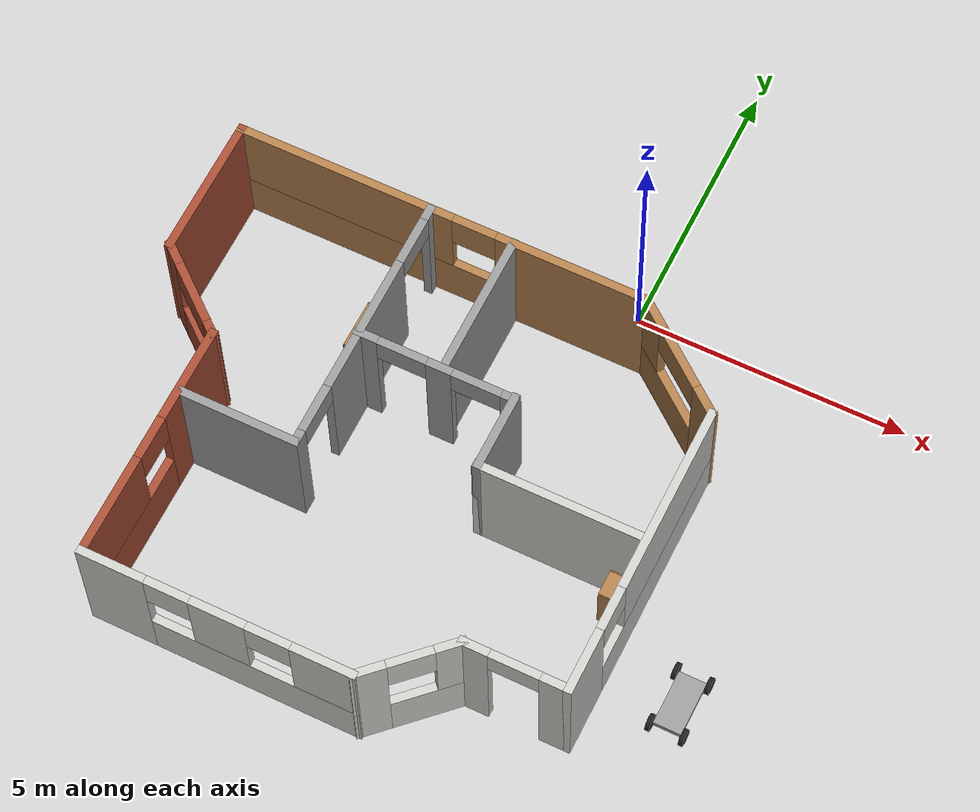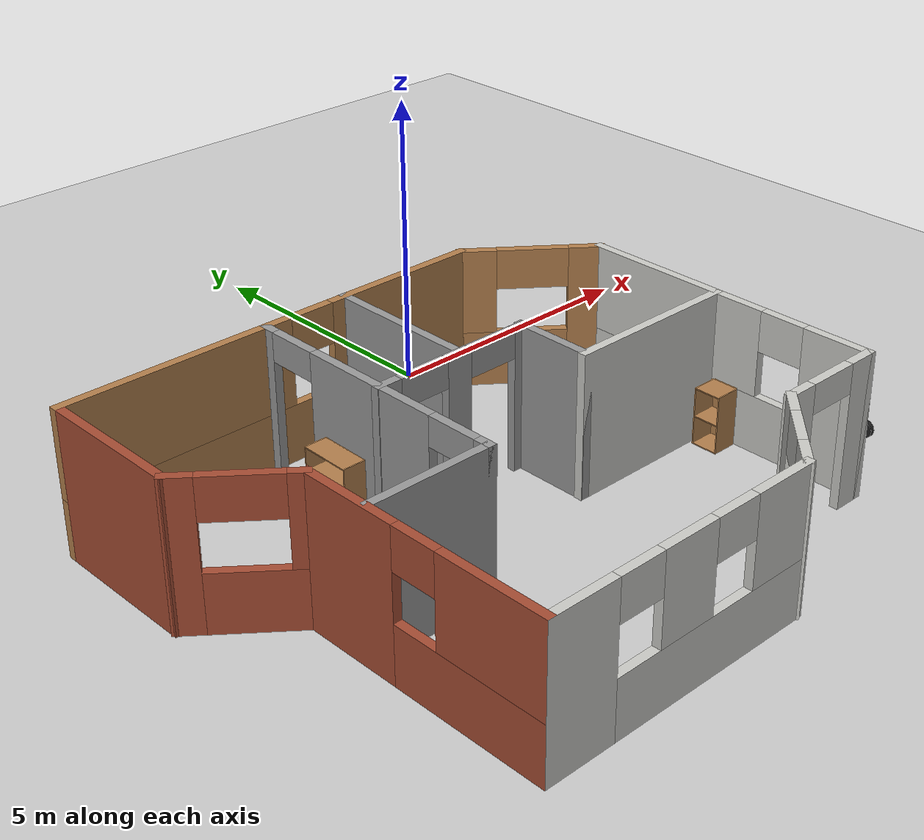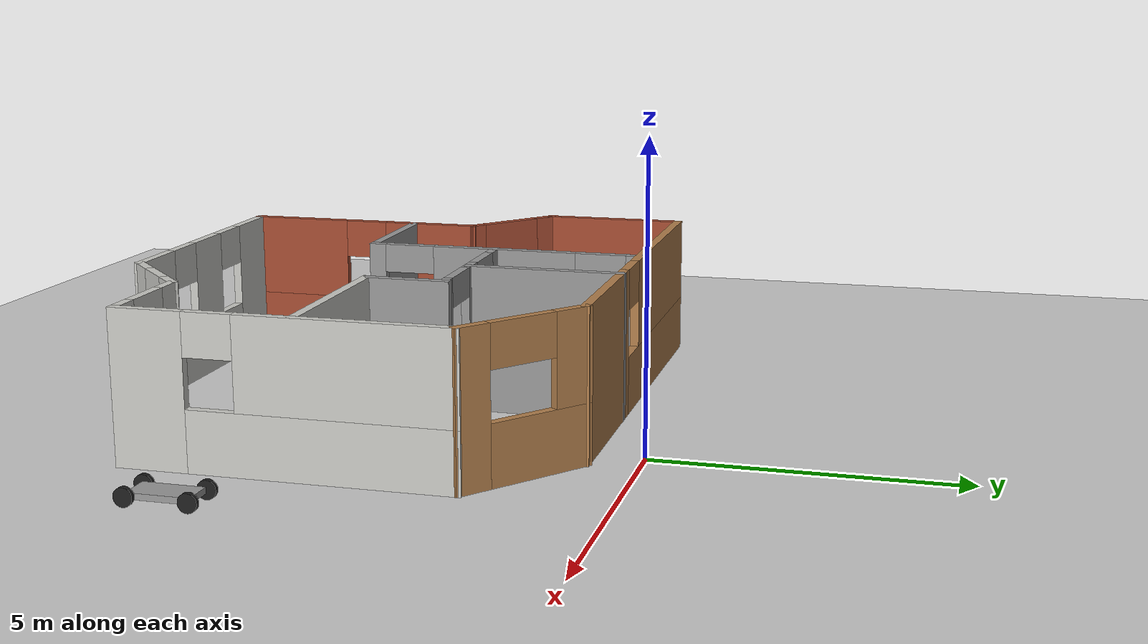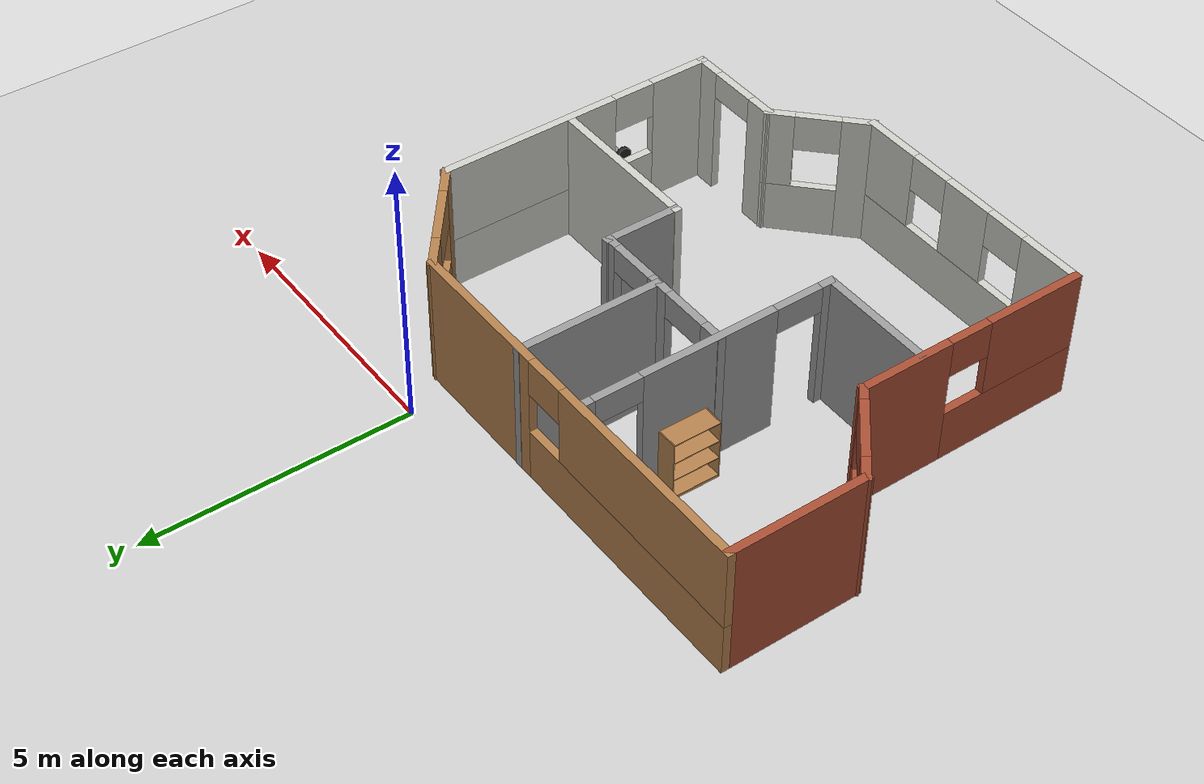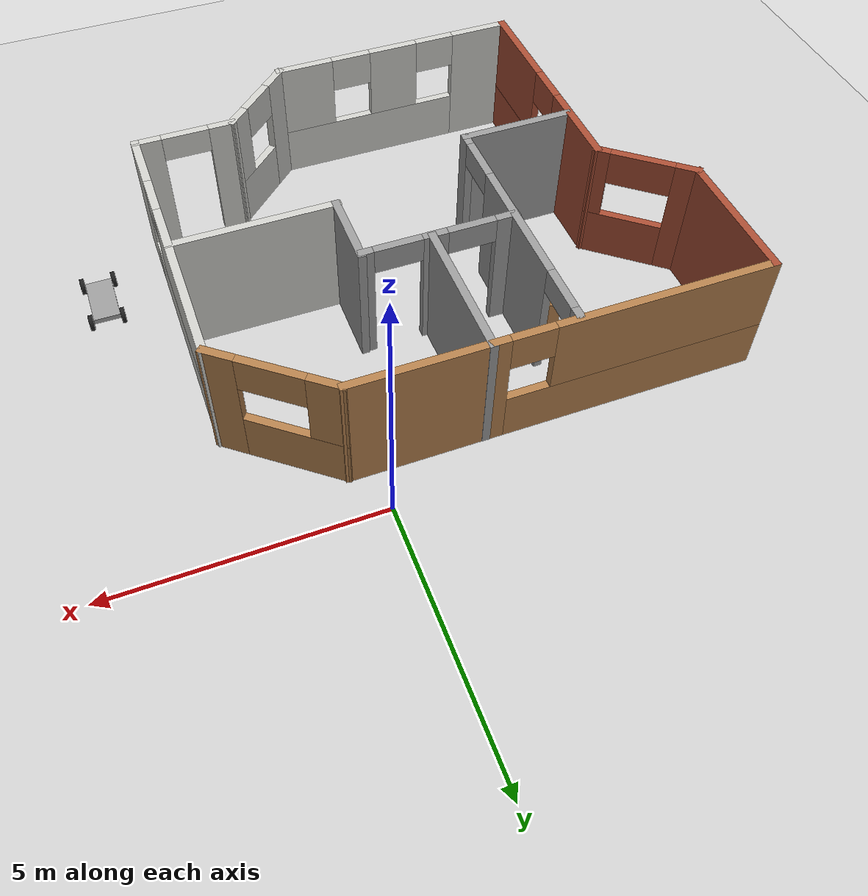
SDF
<sdf version="1.6">
 <world name="default">
  <model name="ground_plane">
   <static>1</static>
   <link name="link">
    <collision name="collision">
     <geometry><plane><normal>0 0 1</normal><size>100 100</size></plane></geometry>
     <surface><friction><ode><mu>100</mu><mu2>50</mu2></ode></friction></surface>
    </collision>
    <visual name="visual">
     <cast_shadows>0</cast_shadows>
     <geometry><plane><normal>0 0 1</normal><size>100 100</size></plane></geometry>
     <material>
      <script><uri>file://media/materials/scripts/gazebo.material</uri><name>Gazebo/Grey</name></script>
     </material>
    </visual>
   </link>
  </model>
  <model name="apartment">
   <pose>-2.40567 -4.86545 0 0 -0 0</pose>
   <link name="Wall_0">
    <pose>-3.27233 -1.84604 0 0 0 -1.5708</pose>
    <visual name="Wall_0_Visual_0">
     <pose>-1.35529 0 1.25 0 -0 0</pose>
     <geometry><box><size>1.80243 0.15 2.5</size></box></geometry>
     <material>
      <script><uri>file://media/materials/scripts/gazebo.material</uri><name>Gazebo/Bricks</name></script>
      <ambient>1 1 1 1</ambient>
     </material>
     <meta><layer>0</layer></meta>
    </visual>
    <collision name="Wall_0_Collision_0">
     <geometry><box><size>1.80243 0.15 2.5</size></box></geometry>
     <pose>-1.35529 0 1.25 0 -0 0</pose>
    </collision>
    <visual name="Wall_0_Visual_1">
     <pose>0.901213 0 0.5 0 -0 0</pose>
     <geometry><box><size>2.71057 0.15 1</size></box></geometry>
     <material>
      <script><uri>file://media/materials/scripts/gazebo.material</uri><name>Gazebo/Bricks</name></script>
      <ambient>1 1 1 1</ambient>
     </material>
     <meta><layer>0</layer></meta>
    </visual>
    <collision name="Wall_0_Collision_1">
     <geometry><box><size>2.71057 0.15 1</size></box></geometry>
     <pose>0.901213 0 0.5 0 -0 0</pose>
    </collision>
    <visual name="Wall_0_Visual_2">
     <pose>1.30121 0 1.75 0 -0 0</pose>
     <geometry><box><size>1.91057 0.15 1.5</size></box></geometry>
     <material>
      <script><uri>file://media/materials/scripts/gazebo.material</uri><name>Gazebo/Bricks</name></script>
      <ambient>1 1 1 1</ambient>
     </material>
     <meta><layer>0</layer></meta>
    </visual>
    <collision name="Wall_0_Collision_2">
     <geometry><box><size>1.91057 0.15 1.5</size></box></geometry>
     <pose>1.30121 0 1.75 0 -0 0</pose>
    </collision>
    <visual name="Wall_0_Visual_3">
     <pose>-0.054074 0 2.15 0 -0 0</pose>
     <geometry><box><size>0.8 0.15 0.7</size></box></geometry>
     <material>
      <script><uri>file://media/materials/scripts/gazebo.material</uri><name>Gazebo/Bricks</name></script>
      <ambient>1 1 1 1</ambient>
     </material>
     <meta><layer>0</layer></meta>
    </visual>
    <collision name="Wall_0_Collision_3">
     <geometry><box><size>0.8 0.15 0.7</size></box></geometry>
     <pose>-0.054074 0 2.15 0 -0 0</pose>
    </collision>
   </link>
   <link name="Wall_1">
    <pose>-0.847334 -4.02754 0 0 -0 0</pose>
    <visual name="Wall_1_Visual_0">
     <pose>-1.88666 0 1.25 0 -0 0</pose>
     <geometry><box><size>1.22668 0.15 2.5</size></box></geometry>
     <material>
      <script><uri>file://media/materials/scripts/gazebo.material</uri><name>Gazebo/CeilingTiled</name></script>
      <ambient>1 1 1 1</ambient>
     </material>
     <meta><layer>0</layer></meta>
    </visual>
    <collision name="Wall_1_Collision_0">
     <geometry><box><size>1.22668 0.15 2.5</size></box></geometry>
     <pose>-1.88666 0 1.25 0 -0 0</pose>
    </collision>
    <visual name="Wall_1_Visual_1">
     <pose>0.613341 0 0.5 0 -0 0</pose>
     <geometry><box><size>3.77332 0.15 1</size></box></geometry>
     <material>
      <script><uri>file://media/materials/scripts/gazebo.material</uri><name>Gazebo/CeilingTiled</name></script>
      <ambient>1 1 1 1</ambient>
     </material>
     <meta><layer>0</layer></meta>
    </visual>
    <collision name="Wall_1_Collision_1">
     <geometry><box><size>3.77332 0.15 1</size></box></geometry>
     <pose>0.613341 0 0.5 0 -0 0</pose>
    </collision>
    <visual name="Wall_1_Visual_2">
     <pose>0.029536 0 1.75 0 -0 0</pose>
     <geometry><box><size>1.00571 0.15 1.5</size></box></geometry>
     <material>
      <script><uri>file://media/materials/scripts/gazebo.material</uri><name>Gazebo/CeilingTiled</name></script>
      <ambient>1 1 1 1</ambient>
     </material>
     <meta><layer>0</layer></meta>
    </visual>
    <collision name="Wall_1_Collision_2">
     <geometry><box><size>1.00571 0.15 1.5</size></box></geometry>
     <pose>0.029536 0 1.75 0 -0 0</pose>
    </collision>
    <visual name="Wall_1_Visual_3">
     <pose>1.9162 0 1.75 0 -0 0</pose>
     <geometry><box><size>1.16761 0.15 1.5</size></box></geometry>
     <material>
      <script><uri>file://media/materials/scripts/gazebo.material</uri><name>Gazebo/CeilingTiled</name></script>
      <ambient>1 1 1 1</ambient>
     </material>
     <meta><layer>0</layer></meta>
    </visual>
    <collision name="Wall_1_Collision_3">
     <geometry><box><size>1.16761 0.15 1.5</size></box></geometry>
     <pose>1.9162 0 1.75 0 -0 0</pose>
    </collision>
    <visual name="Wall_1_Visual_4">
     <pose>-0.873318 0 2.15 0 -0 0</pose>
     <geometry><box><size>0.8 0.15 0.7</size></box></geometry>
     <material>
      <script><uri>file://media/materials/scripts/gazebo.material</uri><name>Gazebo/CeilingTiled</name></script>
      <ambient>1 1 1 1</ambient>
     </material>
     <meta><layer>0</layer></meta>
    </visual>
    <collision name="Wall_1_Collision_4">
     <geometry><box><size>0.8 0.15 0.7</size></box></geometry>
     <pose>-0.873318 0 2.15 0 -0 0</pose>
    </collision>
    <visual name="Wall_1_Visual_5">
     <pose>0.932391 0 2.15 0 -0 0</pose>
     <geometry><box><size>0.8 0.15 0.7</size></box></geometry>
     <material>
      <script><uri>file://media/materials/scripts/gazebo.material</uri><name>Gazebo/CeilingTiled</name></script>
      <ambient>1 1 1 1</ambient>
     </material>
     <meta><layer>0</layer></meta>
    </visual>
    <collision name="Wall_1_Collision_5">
     <geometry><box><size>0.8 0.15 0.7</size></box></geometry>
     <pose>0.932391 0 2.15 0 -0 0</pose>
    </collision>
   </link>
   <link name="Wall_17">
    <collision name="Wall_17_Collision">
     <geometry><box><size>2.25 0.15 2.5</size></box></geometry>
     <pose>0 0 1.25 0 -0 0</pose>
    </collision>
    <visual name="Wall_17_Visual">
     <pose>0 0 1.25 0 -0 0</pose>
     <geometry><box><size>2.25 0.15 2.5</size></box></geometry>
     <material>
      <script><uri>file://media/materials/scripts/gazebo.material</uri><name>Gazebo/Grey</name></script>
      <ambient>1 1 1 1</ambient>
     </material>
     <meta><layer>0</layer></meta>
    </visual>
    <pose>-2.17325 -0.830129 0 0 -0 0</pose>
   </link>
   <link name="Wall_2">
    <pose>2.22217 -3.40105 0 0 -0 0.771237</pose>
    <visual name="Wall_2_Visual_0">
     <pose>-0.667862 0 1.25 0 -0 0</pose>
     <geometry><box><size>0.612204 0.15 2.5</size></box></geometry>
     <material>
      <script><uri>file://media/materials/scripts/gazebo.material</uri><name>Gazebo/CeilingTiled</name></script>
      <ambient>1 1 1 1</ambient>
     </material>
     <meta><layer>0</layer></meta>
    </visual>
    <collision name="Wall_2_Collision_0">
     <geometry><box><size>0.612204 0.15 2.5</size></box></geometry>
     <pose>-0.667862 0 1.25 0 -0 0</pose>
    </collision>
    <visual name="Wall_2_Visual_1">
     <pose>0.306102 0 0.5 0 -0 0</pose>
     <geometry><box><size>1.33573 0.15 1</size></box></geometry>
     <material>
      <script><uri>file://media/materials/scripts/gazebo.material</uri><name>Gazebo/CeilingTiled</name></script>
      <ambient>1 1 1 1</ambient>
     </material>
     <meta><layer>0</layer></meta>
    </visual>
    <collision name="Wall_2_Collision_1">
     <geometry><box><size>1.33573 0.15 1</size></box></geometry>
     <pose>0.306102 0 0.5 0 -0 0</pose>
    </collision>
    <visual name="Wall_2_Visual_2">
     <pose>0.706102 0 1.75 0 -0 0</pose>
     <geometry><box><size>0.535725 0.15 1.5</size></box></geometry>
     <material>
      <script><uri>file://media/materials/scripts/gazebo.material</uri><name>Gazebo/CeilingTiled</name></script>
      <ambient>1 1 1 1</ambient>
     </material>
     <meta><layer>0</layer></meta>
    </visual>
    <collision name="Wall_2_Collision_2">
     <geometry><box><size>0.535725 0.15 1.5</size></box></geometry>
     <pose>0.706102 0 1.75 0 -0 0</pose>
    </collision>
    <visual name="Wall_2_Visual_3">
     <pose>0.03824 0 2.15 0 -0 0</pose>
     <geometry><box><size>0.8 0.15 0.7</size></box></geometry>
     <material>
      <script><uri>file://media/materials/scripts/gazebo.material</uri><name>Gazebo/CeilingTiled</name></script>
      <ambient>1 1 1 1</ambient>
     </material>
     <meta><layer>0</layer></meta>
    </visual>
    <collision name="Wall_2_Collision_3">
     <geometry><box><size>0.8 0.15 0.7</size></box></geometry>
     <pose>0.03824 0 2.15 0 -0 0</pose>
    </collision>
   </link>
   <link name="Wall_21">
    <pose>-1.12325 1.59487 0 0 -0 1.5708</pose>
    <visual name="Wall_21_Visual_0">
     <pose>-2.349 0 1.25 0 -0 0</pose>
     <geometry><box><size>0.301995 0.15 2.5</size></box></geometry>
     <material>
      <script><uri>file://media/materials/scripts/gazebo.material</uri><name>Gazebo/Grey</name></script>
      <ambient>1 1 1 1</ambient>
     </material>
     <meta><layer>0</layer></meta>
    </visual>
    <collision name="Wall_21_Collision_0">
     <geometry><box><size>0.301995 0.15 2.5</size></box></geometry>
     <pose>-2.349 0 1.25 0 -0 0</pose>
    </collision>
    <visual name="Wall_21_Visual_1">
     <pose>-0.002486 0 1.25 0 -0 0</pose>
     <geometry><box><size>2.59104 0.15 2.5</size></box></geometry>
     <material>
      <script><uri>file://media/materials/scripts/gazebo.material</uri><name>Gazebo/Grey</name></script>
      <ambient>1 1 1 1</ambient>
     </material>
     <meta><layer>0</layer></meta>
    </visual>
    <collision name="Wall_21_Collision_1">
     <geometry><box><size>2.59104 0.15 2.5</size></box></geometry>
     <pose>-0.002486 0 1.25 0 -0 0</pose>
    </collision>
    <visual name="Wall_21_Visual_2">
     <pose>2.34652 0 1.25 0 -0 0</pose>
     <geometry><box><size>0.306967 0.15 2.5</size></box></geometry>
     <material>
      <script><uri>file://media/materials/scripts/gazebo.material</uri><name>Gazebo/Grey</name></script>
      <ambient>1 1 1 1</ambient>
     </material>
     <meta><layer>0</layer></meta>
    </visual>
    <collision name="Wall_21_Collision_2">
     <geometry><box><size>0.306967 0.15 2.5</size></box></geometry>
     <pose>2.34652 0 1.25 0 -0 0</pose>
    </collision>
    <visual name="Wall_21_Visual_3">
     <pose>-1.74801 0 2.25 0 -0 0</pose>
     <geometry><box><size>0.9 0.15 0.5</size></box></geometry>
     <material>
      <script><uri>file://media/materials/scripts/gazebo.material</uri><name>Gazebo/Grey</name></script>
      <ambient>1 1 1 1</ambient>
     </material>
     <meta><layer>0</layer></meta>
    </visual>
    <collision name="Wall_21_Collision_3">
     <geometry><box><size>0.9 0.15 0.5</size></box></geometry>
     <pose>-1.74801 0 2.25 0 -0 0</pose>
    </collision>
    <visual name="Wall_21_Visual_4">
     <pose>1.74303 0 2.25 0 -0 0</pose>
     <geometry><box><size>0.9 0.15 0.5</size></box></geometry>
     <material>
      <script><uri>file://media/materials/scripts/gazebo.material</uri><name>Gazebo/Grey</name></script>
      <ambient>1 1 1 1</ambient>
     </material>
     <meta><layer>0</layer></meta>
    </visual>
    <collision name="Wall_21_Collision_4">
     <geometry><box><size>0.9 0.15 0.5</size></box></geometry>
     <pose>1.74303 0 2.25 0 -0 0</pose>
    </collision>
   </link>
   <link name="Wall_25">
    <pose>0.289666 1.41046 0 0 -0 3.14159</pose>
    <visual name="Wall_25_Visual_0">
     <pose>-1.3525 0 1.25 0 -0 0</pose>
     <geometry><box><size>0.295 0.15 2.5</size></box></geometry>
     <material>
      <script><uri>file://media/materials/scripts/gazebo.material</uri><name>Gazebo/Grey</name></script>
      <ambient>1 1 1 1</ambient>
     </material>
     <meta><layer>0</layer></meta>
    </visual>
    <collision name="Wall_25_Collision_0">
     <geometry><box><size>0.295 0.15 2.5</size></box></geometry>
     <pose>-1.3525 0 1.25 0 -0 0</pose>
    </collision>
    <visual name="Wall_25_Visual_1">
     <pose>-0.07438 0 1.25 0 -0 0</pose>
     <geometry><box><size>0.461241 0.15 2.5</size></box></geometry>
     <material>
      <script><uri>file://media/materials/scripts/gazebo.material</uri><name>Gazebo/Grey</name></script>
      <ambient>1 1 1 1</ambient>
     </material>
     <meta><layer>0</layer></meta>
    </visual>
    <collision name="Wall_25_Collision_1">
     <geometry><box><size>0.461241 0.15 2.5</size></box></geometry>
     <pose>-0.07438 0 1.25 0 -0 0</pose>
    </collision>
    <visual name="Wall_25_Visual_2">
     <pose>1.27812 0 1.25 0 -0 0</pose>
     <geometry><box><size>0.443759 0.15 2.5</size></box></geometry>
     <material>
      <script><uri>file://media/materials/scripts/gazebo.material</uri><name>Gazebo/Grey</name></script>
      <ambient>1 1 1 1</ambient>
     </material>
     <meta><layer>0</layer></meta>
    </visual>
    <collision name="Wall_25_Collision_2">
     <geometry><box><size>0.443759 0.15 2.5</size></box></geometry>
     <pose>1.27812 0 1.25 0 -0 0</pose>
    </collision>
    <visual name="Wall_25_Visual_3">
     <pose>-0.755 0 2.25 0 -0 0</pose>
     <geometry><box><size>0.9 0.15 0.5</size></box></geometry>
     <material>
      <script><uri>file://media/materials/scripts/gazebo.material</uri><name>Gazebo/Grey</name></script>
      <ambient>1 1 1 1</ambient>
     </material>
     <meta><layer>0</layer></meta>
    </visual>
    <collision name="Wall_25_Collision_3">
     <geometry><box><size>0.9 0.15 0.5</size></box></geometry>
     <pose>-0.755 0 2.25 0 -0 0</pose>
    </collision>
    <visual name="Wall_25_Visual_4">
     <pose>0.606241 0 2.25 0 -0 0</pose>
     <geometry><box><size>0.9 0.15 0.5</size></box></geometry>
     <material>
      <script><uri>file://media/materials/scripts/gazebo.material</uri><name>Gazebo/Grey</name></script>
      <ambient>1 1 1 1</ambient>
     </material>
     <meta><layer>0</layer></meta>
    </visual>
    <collision name="Wall_25_Collision_4">
     <geometry><box><size>0.9 0.15 0.5</size></box></geometry>
     <pose>0.606241 0 2.25 0 -0 0</pose>
    </collision>
   </link>
   <link name="Wall_3">
    <pose>3.79167 -2.77454 0 0 -0 0</pose>
    <visual name="Wall_3_Visual_0">
     <pose>-0.729967 0 1.25 0 -0 0</pose>
     <geometry><box><size>0.540065 0.15 2.5</size></box></geometry>
     <material>
      <script><uri>file://media/materials/scripts/gazebo.material</uri><name>Gazebo/CeilingTiled</name></script>
      <ambient>1 1 1 1</ambient>
     </material>
     <meta><layer>0</layer></meta>
    </visual>
    <collision name="Wall_3_Collision_0">
     <geometry><box><size>0.540065 0.15 2.5</size></box></geometry>
     <pose>-0.729967 0 1.25 0 -0 0</pose>
    </collision>
    <visual name="Wall_3_Visual_1">
     <pose>0.720033 0 1.25 0 -0 0</pose>
     <geometry><box><size>0.559935 0.15 2.5</size></box></geometry>
     <material>
      <script><uri>file://media/materials/scripts/gazebo.material</uri><name>Gazebo/CeilingTiled</name></script>
      <ambient>1 1 1 1</ambient>
     </material>
     <meta><layer>0</layer></meta>
    </visual>
    <collision name="Wall_3_Collision_1">
     <geometry><box><size>0.559935 0.15 2.5</size></box></geometry>
     <pose>0.720033 0 1.25 0 -0 0</pose>
    </collision>
    <visual name="Wall_3_Visual_2">
     <pose>-0.009935 0 2.25 0 -0 0</pose>
     <geometry><box><size>0.9 0.15 0.5</size></box></geometry>
     <material>
      <script><uri>file://media/materials/scripts/gazebo.material</uri><name>Gazebo/CeilingTiled</name></script>
      <ambient>1 1 1 1</ambient>
     </material>
     <meta><layer>0</layer></meta>
    </visual>
    <collision name="Wall_3_Collision_2">
     <geometry><box><size>0.9 0.15 0.5</size></box></geometry>
     <pose>-0.009935 0 2.25 0 -0 0</pose>
    </collision>
   </link>
   <link name="Wall_30">
    <collision name="Wall_30_Collision">
     <geometry><box><size>2.75 0.15 2.5</size></box></geometry>
     <pose>0 0 1.25 0 -0 0</pose>
    </collision>
    <visual name="Wall_30_Visual">
     <pose>0 0 1.25 0 -0 0</pose>
     <geometry><box><size>2.75 0.15 2.5</size></box></geometry>
     <material>
      <script><uri>file://media/materials/scripts/gazebo.material</uri><name>Gazebo/Grey</name></script>
      <ambient>1 1 1 1</ambient>
     </material>
     <meta><layer>0</layer></meta>
    </visual>
    <pose>0.419085 2.73344 0 0 0 -1.5708</pose>
   </link>
   <link name="Wall_33">
    <collision name="Wall_33_Collision">
     <geometry><box><size>1.5 0.15 2.5</size></box></geometry>
     <pose>0 0 1.25 0 -0 0</pose>
    </collision>
    <visual name="Wall_33_Visual">
     <pose>0 0 1.25 0 -0 0</pose>
     <geometry><box><size>1.5 0.15 2.5</size></box></geometry>
     <material>
      <script><uri>file://media/materials/scripts/gazebo.material</uri><name>Gazebo/Grey</name></script>
      <ambient>1 1 1 1</ambient>
     </material>
     <meta><layer>0</layer></meta>
    </visual>
    <pose>1.71691 0.763206 0 0 0 -1.5708</pose>
   </link>
   <link name="Wall_34">
    <collision name="Wall_34_Collision">
     <geometry><box><size>3.156 0.15 2.5</size></box></geometry>
     <pose>0 0 1.25 0 -0 0</pose>
    </collision>
    <visual name="Wall_34_Visual">
     <pose>0 0 1.25 0 -0 0</pose>
     <geometry><box><size>3.156 0.15 2.5</size></box></geometry>
     <material>
      <script><uri>file://media/materials/scripts/gazebo.material</uri><name>Gazebo/CeilingTiled</name></script>
      <ambient>1 1 1 1</ambient>
     </material>
     <meta><layer>0</layer></meta>
    </visual>
    <pose>3.20654 0.088206 0 0 -0 0</pose>
   </link>
   <link name="Wall_4">
    <pose>4.71667 -0.099545 0 0 -0 1.5708</pose>
    <visual name="Wall_4_Visual_0">
     <pose>-2.15037 0 1.25 0 -0 0</pose>
     <geometry><box><size>1.19925 0.15 2.5</size></box></geometry>
     <material>
      <script><uri>file://media/materials/scripts/gazebo.material</uri><name>Gazebo/CeilingTiled</name></script>
      <ambient>1 1 1 1</ambient>
     </material>
     <meta><layer>0</layer></meta>
    </visual>
    <collision name="Wall_4_Collision_0">
     <geometry><box><size>1.19925 0.15 2.5</size></box></geometry>
     <pose>-2.15037 0 1.25 0 -0 0</pose>
    </collision>
    <visual name="Wall_4_Visual_1">
     <pose>0.599625 0 0.5 0 -0 0</pose>
     <geometry><box><size>4.30075 0.15 1</size></box></geometry>
     <material>
      <script><uri>file://media/materials/scripts/gazebo.material</uri><name>Gazebo/CeilingTiled</name></script>
      <ambient>1 1 1 1</ambient>
     </material>
     <meta><layer>0</layer></meta>
    </visual>
    <collision name="Wall_4_Collision_1">
     <geometry><box><size>4.30075 0.15 1</size></box></geometry>
     <pose>0.599625 0 0.5 0 -0 0</pose>
    </collision>
    <visual name="Wall_4_Visual_2">
     <pose>0.999625 0 1.75 0 -0 0</pose>
     <geometry><box><size>3.50075 0.15 1.5</size></box></geometry>
     <material>
      <script><uri>file://media/materials/scripts/gazebo.material</uri><name>Gazebo/CeilingTiled</name></script>
      <ambient>1 1 1 1</ambient>
     </material>
     <meta><layer>0</layer></meta>
    </visual>
    <collision name="Wall_4_Collision_2">
     <geometry><box><size>3.50075 0.15 1.5</size></box></geometry>
     <pose>0.999625 0 1.75 0 -0 0</pose>
    </collision>
    <visual name="Wall_4_Visual_3">
     <pose>-1.15075 0 2.15 0 -0 0</pose>
     <geometry><box><size>0.8 0.15 0.7</size></box></geometry>
     <material>
      <script><uri>file://media/materials/scripts/gazebo.material</uri><name>Gazebo/CeilingTiled</name></script>
      <ambient>1 1 1 1</ambient>
     </material>
     <meta><layer>0</layer></meta>
    </visual>
    <collision name="Wall_4_Collision_3">
     <geometry><box><size>0.8 0.15 0.7</size></box></geometry>
     <pose>-1.15075 0 2.15 0 -0 0</pose>
    </collision>
   </link>
   <link name="Wall_5">
    <pose>3.80017 3.30195 0 0 -0 2.47133</pose>
    <visual name="Wall_5_Visual_0">
     <pose>-0.935133 0 1.25 0 -0 0</pose>
     <geometry><box><size>0.61839 0.15 2.5</size></box></geometry>
     <material>
      <script><uri>file://media/materials/scripts/gazebo.material</uri><name>Gazebo/Wood</name></script>
      <ambient>1 1 1 1</ambient>
     </material>
     <meta><layer>0</layer></meta>
    </visual>
    <collision name="Wall_5_Collision_0">
     <geometry><box><size>0.61839 0.15 2.5</size></box></geometry>
     <pose>-0.935133 0 1.25 0 -0 0</pose>
    </collision>
    <visual name="Wall_5_Visual_1">
     <pose>0.309195 0 0.5 0 -0 0</pose>
     <geometry><box><size>1.87027 0.15 1</size></box></geometry>
     <material>
      <script><uri>file://media/materials/scripts/gazebo.material</uri><name>Gazebo/Wood</name></script>
      <ambient>1 1 1 1</ambient>
     </material>
     <meta><layer>0</layer></meta>
    </visual>
    <collision name="Wall_5_Collision_1">
     <geometry><box><size>1.87027 0.15 1</size></box></geometry>
     <pose>0.309195 0 0.5 0 -0 0</pose>
    </collision>
    <visual name="Wall_5_Visual_2">
     <pose>0.909195 0 1.75 0 -0 0</pose>
     <geometry><box><size>0.670266 0.15 1.5</size></box></geometry>
     <material>
      <script><uri>file://media/materials/scripts/gazebo.material</uri><name>Gazebo/Wood</name></script>
      <ambient>1 1 1 1</ambient>
     </material>
     <meta><layer>0</layer></meta>
    </visual>
    <collision name="Wall_5_Collision_2">
     <geometry><box><size>0.670266 0.15 1.5</size></box></geometry>
     <pose>0.909195 0 1.75 0 -0 0</pose>
    </collision>
    <visual name="Wall_5_Visual_3">
     <pose>-0.025938 0 2.15 0 -0 0</pose>
     <geometry><box><size>1.2 0.15 0.7</size></box></geometry>
     <material>
      <script><uri>file://media/materials/scripts/gazebo.material</uri><name>Gazebo/Wood</name></script>
      <ambient>1 1 1 1</ambient>
     </material>
     <meta><layer>0</layer></meta>
    </visual>
    <collision name="Wall_5_Collision_3">
     <geometry><box><size>1.2 0.15 0.7</size></box></geometry>
     <pose>-0.025938 0 2.15 0 -0 0</pose>
    </collision>
   </link>
   <link name="Wall_6">
    <pose>-0.916334 4.02846 0 0 -0 3.14159</pose>
    <visual name="Wall_6_Visual_0">
     <pose>-2.44792 0 1.25 0 -0 0</pose>
     <geometry><box><size>2.85416 0.15 2.5</size></box></geometry>
     <material>
      <script><uri>file://media/materials/scripts/gazebo.material</uri><name>Gazebo/Wood</name></script>
      <ambient>1 1 1 1</ambient>
     </material>
     <meta><layer>0</layer></meta>
    </visual>
    <collision name="Wall_6_Collision_0">
     <geometry><box><size>2.85416 0.15 2.5</size></box></geometry>
     <pose>-2.44792 0 1.25 0 -0 0</pose>
    </collision>
    <visual name="Wall_6_Visual_1">
     <pose>1.42708 0 0.5 0 -0 0</pose>
     <geometry><box><size>4.89584 0.15 1</size></box></geometry>
     <material>
      <script><uri>file://media/materials/scripts/gazebo.material</uri><name>Gazebo/Wood</name></script>
      <ambient>1 1 1 1</ambient>
     </material>
     <meta><layer>0</layer></meta>
    </visual>
    <collision name="Wall_6_Collision_1">
     <geometry><box><size>4.89584 0.15 1</size></box></geometry>
     <pose>1.42708 0 0.5 0 -0 0</pose>
    </collision>
    <visual name="Wall_6_Visual_2">
     <pose>1.82708 0 1.75 0 -0 0</pose>
     <geometry><box><size>4.09584 0.15 1.5</size></box></geometry>
     <material>
      <script><uri>file://media/materials/scripts/gazebo.material</uri><name>Gazebo/Wood</name></script>
      <ambient>1 1 1 1</ambient>
     </material>
     <meta><layer>0</layer></meta>
    </visual>
    <collision name="Wall_6_Collision_2">
     <geometry><box><size>4.09584 0.15 1.5</size></box></geometry>
     <pose>1.82708 0 1.75 0 -0 0</pose>
    </collision>
    <visual name="Wall_6_Visual_3">
     <pose>-0.620842 0 2.15 0 -0 0</pose>
     <geometry><box><size>0.8 0.15 0.7</size></box></geometry>
     <material>
      <script><uri>file://media/materials/scripts/gazebo.material</uri><name>Gazebo/Wood</name></script>
      <ambient>1 1 1 1</ambient>
     </material>
     <meta><layer>0</layer></meta>
    </visual>
    <collision name="Wall_6_Collision_3">
     <geometry><box><size>0.8 0.15 0.7</size></box></geometry>
     <pose>-0.620842 0 2.15 0 -0 0</pose>
    </collision>
   </link>
   <link name="Wall_7">
    <collision name="Wall_7_Collision">
     <geometry><box><size>2.66 0.15 2.5</size></box></geometry>
     <pose>0 0 1.25 0 -0 0</pose>
    </collision>
    <visual name="Wall_7_Visual">
     <pose>0 0 1.25 0 -0 0</pose>
     <geometry><box><size>2.66 0.15 2.5</size></box></geometry>
     <material>
      <script><uri>file://media/materials/scripts/gazebo.material</uri><name>Gazebo/Bricks</name></script>
      <ambient>1 1 1 1</ambient>
     </material>
     <meta><layer>0</layer></meta>
    </visual>
    <pose>-4.71633 2.77345 0 0 0 -1.5708</pose>
   </link>
   <link name="Wall_8">
    <pose>-3.99433 0.926955 0 0 0 -0.68637</pose>
    <visual name="Wall_8_Visual_0">
     <pose>-0.766559 0 1.25 0 -0 0</pose>
     <geometry><box><size>0.483597 0.15 2.5</size></box></geometry>
     <material>
      <script><uri>file://media/materials/scripts/gazebo.material</uri><name>Gazebo/Bricks</name></script>
      <ambient>1 1 1 1</ambient>
     </material>
     <meta><layer>0</layer></meta>
    </visual>
    <collision name="Wall_8_Collision_0">
     <geometry><box><size>0.483597 0.15 2.5</size></box></geometry>
     <pose>-0.766559 0 1.25 0 -0 0</pose>
    </collision>
    <visual name="Wall_8_Visual_1">
     <pose>0.241798 0 0.5 0 -0 0</pose>
     <geometry><box><size>1.53312 0.15 1</size></box></geometry>
     <material>
      <script><uri>file://media/materials/scripts/gazebo.material</uri><name>Gazebo/Bricks</name></script>
      <ambient>1 1 1 1</ambient>
     </material>
     <meta><layer>0</layer></meta>
    </visual>
    <collision name="Wall_8_Collision_1">
     <geometry><box><size>1.53312 0.15 1</size></box></geometry>
     <pose>0.241798 0 0.5 0 -0 0</pose>
    </collision>
    <visual name="Wall_8_Visual_2">
     <pose>0.841798 0 1.75 0 -0 0</pose>
     <geometry><box><size>0.333118 0.15 1.5</size></box></geometry>
     <material>
      <script><uri>file://media/materials/scripts/gazebo.material</uri><name>Gazebo/Bricks</name></script>
      <ambient>1 1 1 1</ambient>
     </material>
     <meta><layer>0</layer></meta>
    </visual>
    <collision name="Wall_8_Collision_2">
     <geometry><box><size>0.333118 0.15 1.5</size></box></geometry>
     <pose>0.841798 0 1.75 0 -0 0</pose>
    </collision>
    <visual name="Wall_8_Visual_3">
     <pose>0.075239 0 2.15 0 -0 0</pose>
     <geometry><box><size>1.2 0.15 0.7</size></box></geometry>
     <material>
      <script><uri>file://media/materials/scripts/gazebo.material</uri><name>Gazebo/Bricks</name></script>
      <ambient>1 1 1 1</ambient>
     </material>
     <meta><layer>0</layer></meta>
    </visual>
    <collision name="Wall_8_Collision_3">
     <geometry><box><size>1.2 0.15 0.7</size></box></geometry>
     <pose>0.075239 0 2.15 0 -0 0</pose>
    </collision>
   </link>
   <static>1</static>
  </model>
  <model name="bookshelf">
   <static>1</static>
   <link name="link">
    <inertial><mass>1</mass></inertial>
    <collision name="back">
     <pose>0 0.005 0.6 0 -0 0</pose>
     <geometry><box><size>0.9 0.01 1.2</size></box></geometry>
    </collision>
    <visual name="visual1">
     <pose>0 0.005 0.6 0 -0 0</pose>
     <geometry><box><size>0.9 0.01 1.2</size></box></geometry>
     <material>
      <script><uri>file://media/materials/scripts/gazebo.material</uri><name>Gazebo/Wood</name></script>
     </material>
    </visual>
    <collision name="left_side">
     <pose>0.45 -0.195 0.6 0 -0 0</pose>
     <geometry><box><size>0.02 0.4 1.2</size></box></geometry>
    </collision>
    <visual name="visual2">
     <pose>0.45 -0.195 0.6 0 -0 0</pose>
     <geometry><box><size>0.02 0.4 1.2</size></box></geometry>
     <material>
      <script><uri>file://media/materials/scripts/gazebo.material</uri><name>Gazebo/Wood</name></script>
     </material>
    </visual>
    <collision name="right_side">
     <pose>-0.45 -0.195 0.6 0 -0 0</pose>
     <geometry><box><size>0.02 0.4 1.2</size></box></geometry>
    </collision>
    <visual name="visual3">
     <pose>-0.45 -0.195 0.6 0 -0 0</pose>
     <geometry><box><size>0.02 0.4 1.2</size></box></geometry>
     <material>
      <script><uri>file://media/materials/scripts/gazebo.material</uri><name>Gazebo/Wood</name></script>
     </material>
    </visual>
    <collision name="bottom">
     <pose>0 -0.195 0.03 0 -0 0</pose>
     <geometry><box><size>0.88 0.4 0.06</size></box></geometry>
    </collision>
    <visual name="visual4">
     <pose>0 -0.195 0.03 0 -0 0</pose>
     <geometry><box><size>0.88 0.4 0.06</size></box></geometry>
     <material>
      <script><uri>file://media/materials/scripts/gazebo.material</uri><name>Gazebo/Wood</name></script>
     </material>
    </visual>
    <collision name="top">
     <pose>0 -0.195 1.19 0 -0 0</pose>
     <geometry><box><size>0.88 0.4 0.02</size></box></geometry>
    </collision>
    <visual name="visual5">
     <pose>0 -0.195 1.19 0 -0 0</pose>
     <geometry><box><size>0.88 0.4 0.02</size></box></geometry>
     <material>
      <script><uri>file://media/materials/scripts/gazebo.material</uri><name>Gazebo/Wood</name></script>
     </material>
    </visual>
    <collision name="low_shelf">
     <pose>0 -0.195 0.43 0 -0 0</pose>
     <geometry><box><size>0.88 0.4 0.02</size></box></geometry>
    </collision>
    <visual name="visual6">
     <pose>0 -0.195 0.43 0 -0 0</pose>
     <geometry><box><size>0.88 0.4 0.02</size></box></geometry>
     <material>
      <script><uri>file://media/materials/scripts/gazebo.material</uri><name>Gazebo/Wood</name></script>
     </material>
    </visual>
    <collision name="high_shelf">
     <pose>0 -0.195 0.8 0 -0 0</pose>
     <geometry><box><size>0.88 0.4 0.02</size></box></geometry>
    </collision>
    <visual name="visual7">
     <pose>0 -0.195 0.8 0 -0 0</pose>
     <geometry><box><size>0.88 0.4 0.02</size></box></geometry>
     <material>
      <script><uri>file://media/materials/scripts/gazebo.material</uri><name>Gazebo/Wood</name></script>
     </material>
    </visual>
   </link>
   <pose>-3.62882 -2.73668 0 0 0 -1.58135</pose>
  </model>
  <model name="cabinet">
   <static>1</static>
   <link name="cabinet_bottom_plate">
    <inertial>
     <pose>0 0 -1 0 -0 0</pose>
     <inertia><ixx>2.05</ixx><ixy>0</ixy><ixz>0</ixz><iyy>2.05</iyy><iyz>0</iyz><izz>2.05</izz></inertia>
     <mass>25</mass>
    </inertial>
    <collision name="cabinet_bottom_plate_geom">
     <pose>0 0 0.01 0 -0 0</pose>
     <geometry><box><size>0.45 0.45 0.02</size></box></geometry>
    </collision>
    <visual name="cabinet_bottom_plate_geom_visual">
     <pose>0 0 0.01 0 -0 0</pose>
     <geometry><box><size>0.45 0.45 0.02</size></box></geometry>
     <material>
      <script><uri>file://media/materials/scripts/gazebo.material</uri><name>Gazebo/Wood</name></script>
     </material>
    </visual>
    <collision name="cabinet_bottom_plate_geom_cabinet_back_plate">
     <pose>0.235 0 0.51 0 -0 0</pose>
     <geometry><box><size>0.02 0.45 1.02</size></box></geometry>
    </collision>
    <visual name="cabinet_bottom_plate_geom_cabinet_back_plate_visual">
     <pose>0.235 0 0.51 0 -0 0</pose>
     <geometry><box><size>0.02 0.45 1.02</size></box></geometry>
     <material>
      <script><uri>file://media/materials/scripts/gazebo.material</uri><name>Gazebo/Wood</name></script>
     </material>
    </visual>
    <collision name="cabinet_bottom_plate_geom_cabinet_left_plate">
     <pose>0 0.235 0.51 0 -0 0</pose>
     <geometry><box><size>0.45 0.02 1.02</size></box></geometry>
    </collision>
    <visual name="cabinet_bottom_plate_geom_cabinet_left_plate_visual">
     <pose>0 0.235 0.51 0 -0 0</pose>
     <geometry><box><size>0.45 0.02 1.02</size></box></geometry>
     <material>
      <script><uri>file://media/materials/scripts/gazebo.material</uri><name>Gazebo/Wood</name></script>
     </material>
    </visual>
    <collision name="cabinet_bottom_plate_geom_cabinet_middle_plate">
     <pose>0 0 0.51 0 -0 0</pose>
     <geometry><box><size>0.45 0.45 0.02</size></box></geometry>
    </collision>
    <visual name="cabinet_bottom_plate_geom_cabinet_middle_plate_visual">
     <pose>0 0 0.51 0 -0 0</pose>
     <geometry><box><size>0.45 0.45 0.02</size></box></geometry>
     <material>
      <script><uri>file://media/materials/scripts/gazebo.material</uri><name>Gazebo/Wood</name></script>
     </material>
    </visual>
    <collision name="cabinet_bottom_plate_geom_cabinet_right_plate">
     <pose>0 -0.235 0.51 0 -0 0</pose>
     <geometry><box><size>0.45 0.02 1.02</size></box></geometry>
    </collision>
    <visual name="cabinet_bottom_plate_geom_cabinet_right_plate_visual">
     <pose>0 -0.235 0.51 0 -0 0</pose>
     <geometry><box><size>0.45 0.02 1.02</size></box></geometry>
     <material>
      <script><uri>file://media/materials/scripts/gazebo.material</uri><name>Gazebo/Wood</name></script>
     </material>
    </visual>
    <collision name="cabinet_bottom_plate_geom_cabinet_top_plate">
     <pose>0 0 1.01 0 -0 0</pose>
     <geometry><box><size>0.45 0.45 0.02</size></box></geometry>
    </collision>
    <visual name="cabinet_bottom_plate_geom_cabinet_top_plate_visual">
     <pose>0 0 1.01 0 -0 0</pose>
     <geometry><box><size>0.45 0.45 0.02</size></box></geometry>
     <material>
      <script><uri>file://media/materials/scripts/gazebo.material</uri><name>Gazebo/Wood</name></script>
     </material>
    </visual>
   </link>
   <pose>1.98989 -5.14777 0 0 -0 0</pose>
  </model>
  <model name="cart_front_steer">
   <link name="chassis">
    <pose>0 0 0.15 0 -0 0</pose>
    <inertial>
     <pose>0.1 0 0 0 -0 0</pose>
     <mass>10</mass>
     <inertia>
      <ixx>0.216667</ixx>
      <iyy>0.841667</iyy>
      <izz>1.04167</izz>
      <ixy>0</ixy>
      <ixz>0</ixz>
      <iyz>0</iyz>
     </inertia>
    </inertial>
    <collision name="collision"><geometry><box><size>1 0.5 0.1</size></box></geometry></collision>
    <visual name="visual">
     <geometry><box><size>1 0.5 0.1</size></box></geometry>
     <material>
      <script><uri>file://media/materials/scripts/gazebo.material</uri><name>Gazebo/Grey</name></script>
     </material>
    </visual>
   </link>
   <link name="wheel_front_left">
    <pose>0.5 0.298 0.15 -1.5708 -0.087266 0</pose>
    <inertial>
     <mass>0.5</mass>
     <inertia>
      <ixx>0.00307917</ixx>
      <iyy>0.00307917</iyy>
      <izz>0.005625</izz>
      <ixy>0</ixy>
      <ixz>0</ixz>
      <iyz>0</iyz>
     </inertia>
    </inertial>
    <collision name="collision">
     <geometry><cylinder><radius>0.15</radius><length>0.08</length></cylinder></geometry>
    </collision>
    <visual name="visual">
     <geometry><cylinder><radius>0.15</radius><length>0.08</length></cylinder></geometry>
     <material>
      <script><uri>file://media/materials/scripts/gazebo.material</uri><name>Gazebo/Black</name></script>
     </material>
    </visual>
   </link>
   <joint name="wheel_front_left_steer_spin" type="universal">
    <parent>chassis</parent>
    <child>wheel_front_left</child>
    <axis>
     <xyz>0 -1 0</xyz>
     <limit><lower>-0.610865</lower><upper>0.610865</upper></limit>
     <use_parent_model_frame>0</use_parent_model_frame>
     <dynamics><spring_reference>0</spring_reference><spring_stiffness>0</spring_stiffness></dynamics>
    </axis>
    <axis2>
     <xyz>0 0 1</xyz>
     <use_parent_model_frame>0</use_parent_model_frame>
     <dynamics><spring_reference>0</spring_reference><spring_stiffness>0</spring_stiffness></dynamics>
    </axis2>
   </joint>
   <link name="wheel_front_right">
    <pose>0.5 -0.298 0.15 -1.5708 -0.087266 0</pose>
    <inertial>
     <mass>0.5</mass>
     <inertia>
      <ixx>0.00307917</ixx>
      <iyy>0.00307917</iyy>
      <izz>0.005625</izz>
      <ixy>0</ixy>
      <ixz>0</ixz>
      <iyz>0</iyz>
     </inertia>
    </inertial>
    <collision name="collision">
     <geometry><cylinder><radius>0.15</radius><length>0.08</length></cylinder></geometry>
    </collision>
    <visual name="visual">
     <geometry><cylinder><radius>0.15</radius><length>0.08</length></cylinder></geometry>
     <material>
      <script><uri>file://media/materials/scripts/gazebo.material</uri><name>Gazebo/Black</name></script>
     </material>
    </visual>
   </link>
   <joint name="wheel_front_right_steer_spin" type="universal">
    <parent>chassis</parent>
    <child>wheel_front_right</child>
    <axis>
     <xyz>0 -1 0</xyz>
     <limit><lower>-0.610865</lower><upper>0.610865</upper></limit>
     <use_parent_model_frame>0</use_parent_model_frame>
     <dynamics><spring_reference>0</spring_reference><spring_stiffness>0</spring_stiffness></dynamics>
    </axis>
    <axis2>
     <xyz>0 0 1</xyz>
     <use_parent_model_frame>0</use_parent_model_frame>
     <dynamics><spring_reference>0</spring_reference><spring_stiffness>0</spring_stiffness></dynamics>
    </axis2>
   </joint>
   <link name="wheel_rear_left">
    <pose>-0.5 0.298 0.15 -1.5708 0 0</pose>
    <inertial>
     <mass>0.5</mass>
     <inertia>
      <ixx>0.00307917</ixx>
      <iyy>0.00307917</iyy>
      <izz>0.005625</izz>
      <ixy>0</ixy>
      <ixz>0</ixz>
      <iyz>0</iyz>
     </inertia>
    </inertial>
    <collision name="collision">
     <geometry><cylinder><radius>0.15</radius><length>0.08</length></cylinder></geometry>
    </collision>
    <visual name="visual">
     <geometry><cylinder><radius>0.15</radius><length>0.08</length></cylinder></geometry>
     <material>
      <script><uri>file://media/materials/scripts/gazebo.material</uri><name>Gazebo/Black</name></script>
     </material>
    </visual>
   </link>
   <joint name="wheel_rear_left_spin" type="revolute">
    <parent>chassis</parent>
    <child>wheel_rear_left</child>
    <axis>
     <xyz>0 0 1</xyz>
     <use_parent_model_frame>0</use_parent_model_frame>
     <limit><lower>-1e+16</lower><upper>1e+16</upper></limit>
     <dynamics><spring_reference>0</spring_reference><spring_stiffness>0</spring_stiffness></dynamics>
    </axis>
   </joint>
   <link name="wheel_rear_right">
    <pose>-0.5 -0.298 0.15 -1.5708 0 0</pose>
    <inertial>
     <mass>0.5</mass>
     <inertia>
      <ixx>0.00307917</ixx>
      <iyy>0.00307917</iyy>
      <izz>0.005625</izz>
      <ixy>0</ixy>
      <ixz>0</ixz>
      <iyz>0</iyz>
     </inertia>
    </inertial>
    <collision name="collision">
     <geometry><cylinder><radius>0.15</radius><length>0.08</length></cylinder></geometry>
    </collision>
    <visual name="visual">
     <geometry><cylinder><radius>0.15</radius><length>0.08</length></cylinder></geometry>
     <material>
      <script><uri>file://media/materials/scripts/gazebo.material</uri><name>Gazebo/Black</name></script>
     </material>
    </visual>
   </link>
   <joint name="wheel_rear_right_spin" type="revolute">
    <parent>chassis</parent>
    <child>wheel_rear_right</child>
    <axis>
     <xyz>0 0 1</xyz>
     <use_parent_model_frame>0</use_parent_model_frame>
     <limit><lower>-1e+16</lower><upper>1e+16</upper></limit>
     <dynamics><spring_reference>0</spring_reference><spring_stiffness>0</spring_stiffness></dynamics>
    </axis>
   </joint>
   <pose>3.65069 -6.21118 0 0 0 -1.57588</pose>
  </model>
 </world>
</sdf>
